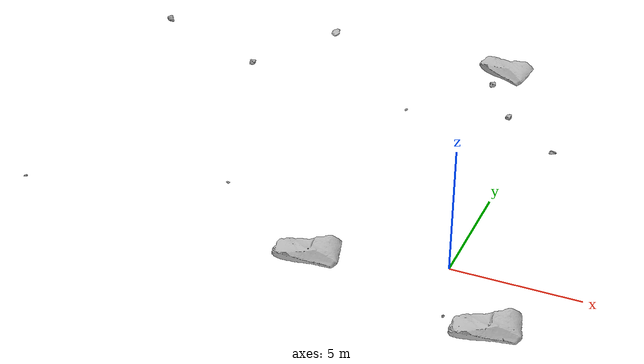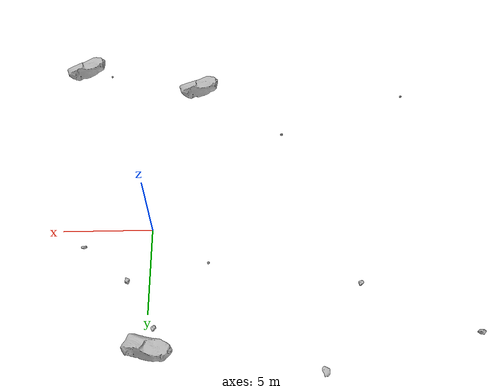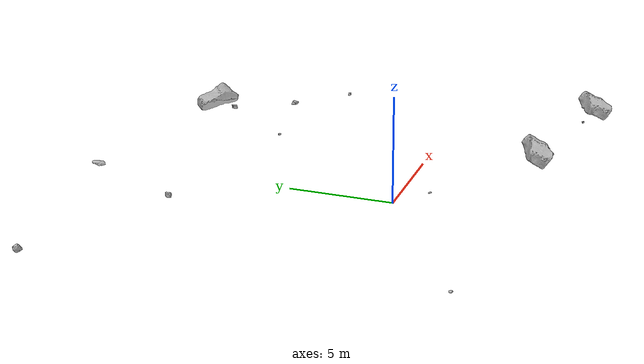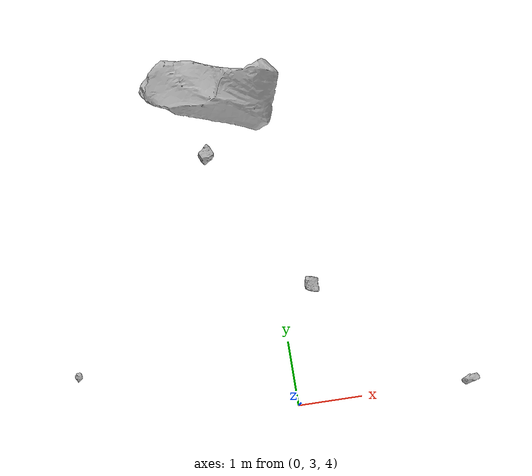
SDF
<sdf version="1.7">
 <world name="marsyard">
  <gravity>0 0 -9.81</gravity>
  <physics name="dart_physics" type="ignored">
   <max_step_size>0.003</max_step_size>
   <real_time_update_rate>333</real_time_update_rate>
   <real_time_factor>1.0</real_time_factor>
  </physics>
  <plugin filename="ignition-gazebo-physics-system" name="ignition::gazebo::systems::Physics"/>
  <plugin filename="ignition-gazebo-user-commands-system" name="ignition::gazebo::systems::UserCommands"/>
  <plugin filename="ignition-gazebo-scene-broadcaster-system" name="ignition::gazebo::systems::SceneBroadcaster"/>
  <plugin filename="ignition-gazebo-contact-system" name="ignition::gazebo::systems::Contact"/>
  <scene>
   <ambient>0.95 0.95 0.95 1</ambient>
   <background>0.70 0.70 0.70 1</background>
   <shadows>false</shadows>
  </scene>
  <light type="directional" name="sun">
   <cast_shadows>false</cast_shadows>
   <pose>0 0 30 0 0 0</pose>
   <diffuse>1 1 1 1</diffuse>
   <specular>0.15 0.15 0.15 1</specular>
   <direction>-0.35 0.1 -0.93</direction>
  </light>
  <model name="Rock_1">
   <static>true</static>
   <pose>2.2384 -7.8179 4.0000 0.0000 0.0000 -2.3917</pose>
   <link name="link">
    <visual name="visual">
     <geometry><mesh><uri>package://rock_generator/rocks_ws/rock_9/meshes/rock_9.stl</uri></mesh></geometry>
    </visual>
    <collision name="collision">
     <geometry><mesh><uri>package://rock_generator/rocks_ws/rock_9/meshes/rock_9.stl</uri></mesh></geometry>
    </collision>
   </link>
  </model>
  <model name="Rock_2">
   <static>true</static>
   <pose>-13.9860 -6.0689 4.0000 0.0000 0.0000 -2.0818</pose>
   <link name="link">
    <visual name="visual">
     <geometry><mesh><uri>package://rock_generator/rocks_ws/rock_5/meshes/rock_5.stl</uri></mesh></geometry>
    </visual>
    <collision name="collision">
     <geometry><mesh><uri>package://rock_generator/rocks_ws/rock_5/meshes/rock_5.stl</uri></mesh></geometry>
    </collision>
   </link>
  </model>
  <model name="Rock_3">
   <static>true</static>
   <pose>-0.8594 7.2176 4.0000 0.0000 0.0000 -0.2742</pose>
   <link name="link">
    <visual name="visual">
     <geometry><mesh><uri>package://rock_generator/rocks_ws/rock_1/meshes/rock_1.stl</uri></mesh></geometry>
    </visual>
    <collision name="collision">
     <geometry><mesh><uri>package://rock_generator/rocks_ws/rock_1/meshes/rock_1.stl</uri></mesh></geometry>
    </collision>
   </link>
  </model>
  <model name="Rock_4">
   <static>true</static>
   <pose>3.6638 -8.2081 4.0000 0.0000 0.0000 0.5694</pose>
   <link name="link">
    <visual name="visual">
     <geometry><mesh><uri>package://rock_generator/rocks_ws/rock_4/meshes/rock_4.stl</uri></mesh></geometry>
    </visual>
    <collision name="collision">
     <geometry><mesh><uri>package://rock_generator/rocks_ws/rock_4/meshes/rock_4.stl</uri></mesh></geometry>
    </collision>
   </link>
  </model>
  <model name="Rock_5">
   <static>true</static>
   <pose>-8.5553 9.2936 4.0000 0.0000 0.0000 -1.5619</pose>
   <link name="link">
    <visual name="visual">
     <geometry><mesh><uri>package://rock_generator/rocks_ws/rock_8/meshes/rock_8.stl</uri></mesh></geometry>
    </visual>
    <collision name="collision">
     <geometry><mesh><uri>package://rock_generator/rocks_ws/rock_8/meshes/rock_8.stl</uri></mesh></geometry>
    </collision>
   </link>
  </model>
  <model name="Rock_7">
   <static>true</static>
   <pose>-7.1997 -3.5837 4.0000 0.0000 0.0000 2.8901</pose>
   <link name="link">
    <visual name="visual">
     <geometry><mesh><uri>package://rock_generator/rocks_ws/rock_5/meshes/rock_5.stl</uri></mesh></geometry>
    </visual>
    <collision name="collision">
     <geometry><mesh><uri>package://rock_generator/rocks_ws/rock_5/meshes/rock_5.stl</uri></mesh></geometry>
    </collision>
   </link>
  </model>
  <model name="Rock_8">
   <static>true</static>
   <pose>-2.7570 -6.7408 4.0000 0.0000 0.0000 0.4433</pose>
   <link name="link">
    <visual name="visual">
     <geometry><mesh><uri>package://rock_generator/rocks_ws/rock_4/meshes/rock_4.stl</uri></mesh></geometry>
    </visual>
    <collision name="collision">
     <geometry><mesh><uri>package://rock_generator/rocks_ws/rock_4/meshes/rock_4.stl</uri></mesh></geometry>
    </collision>
   </link>
  </model>
  <model name="Rock_9">
   <static>true</static>
   <pose>0.5300 4.8412 4.0000 0.0000 0.0000 -2.6670</pose>
   <link name="link">
    <visual name="visual">
     <geometry><mesh><uri>package://rock_generator/rocks_ws/rock_1/meshes/rock_1.stl</uri></mesh></geometry>
    </visual>
    <collision name="collision">
     <geometry><mesh><uri>package://rock_generator/rocks_ws/rock_1/meshes/rock_1.stl</uri></mesh></geometry>
    </collision>
   </link>
  </model>
  <model name="Rock_10">
   <static>true</static>
   <pose>-10.5364 5.1700 4.0000 0.0000 0.0000 -0.5334</pose>
   <link name="link">
    <visual name="visual">
     <geometry><mesh><uri>package://rock_generator/rocks_ws/rock_1/meshes/rock_1.stl</uri></mesh></geometry>
    </visual>
    <collision name="collision">
     <geometry><mesh><uri>package://rock_generator/rocks_ws/rock_1/meshes/rock_1.stl</uri></mesh></geometry>
    </collision>
   </link>
  </model>
  <model name="Rock_11">
   <static>true</static>
   <pose>-15.7052 7.6940 4.0000 0.0000 0.0000 2.4175</pose>
   <link name="link">
    <visual name="visual">
     <geometry><mesh><uri>package://rock_generator/rocks_ws/rock_3/meshes/rock_3.stl</uri></mesh></geometry>
    </visual>
    <collision name="collision">
     <geometry><mesh><uri>package://rock_generator/rocks_ws/rock_3/meshes/rock_3.stl</uri></mesh></geometry>
    </collision>
   </link>
  </model>
  <model name="Rock_13">
   <static>true</static>
   <pose>2.7285 3.0136 4.0000 0.0000 0.0000 0.0466</pose>
   <link name="link">
    <visual name="visual">
     <geometry><mesh><uri>package://rock_generator/rocks_ws/rock_6/meshes/rock_6.stl</uri></mesh></geometry>
    </visual>
    <collision name="collision">
     <geometry><mesh><uri>package://rock_generator/rocks_ws/rock_6/meshes/rock_6.stl</uri></mesh></geometry>
    </collision>
   </link>
  </model>
  <model name="Rock_15">
   <static>true</static>
   <pose>-0.6604 8.2035 4.0000 0.0000 0.0000 -0.1098</pose>
   <link name="link">
    <visual name="visual">
     <geometry><mesh><uri>package://rock_generator/rocks_ws/rock_4/meshes/rock_4.stl</uri></mesh></geometry>
    </visual>
    <collision name="collision">
     <geometry><mesh><uri>package://rock_generator/rocks_ws/rock_4/meshes/rock_4.stl</uri></mesh></geometry>
    </collision>
   </link>
  </model>
  <model name="Rock_16">
   <static>true</static>
   <pose>-3.3295 3.9556 4.0000 0.0000 0.0000 -1.2679</pose>
   <link name="link">
    <visual name="visual">
     <geometry><mesh><uri>package://rock_generator/rocks_ws/rock_5/meshes/rock_5.stl</uri></mesh></geometry>
    </visual>
    <collision name="collision">
     <geometry><mesh><uri>package://rock_generator/rocks_ws/rock_5/meshes/rock_5.stl</uri></mesh></geometry>
    </collision>
   </link>
  </model>
 </world>
</sdf>
